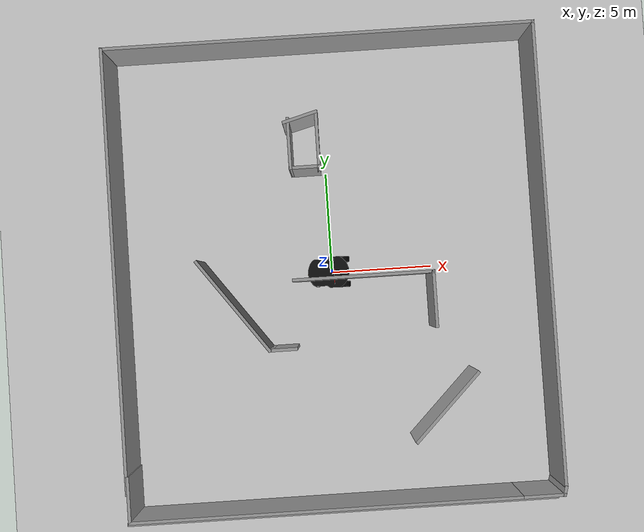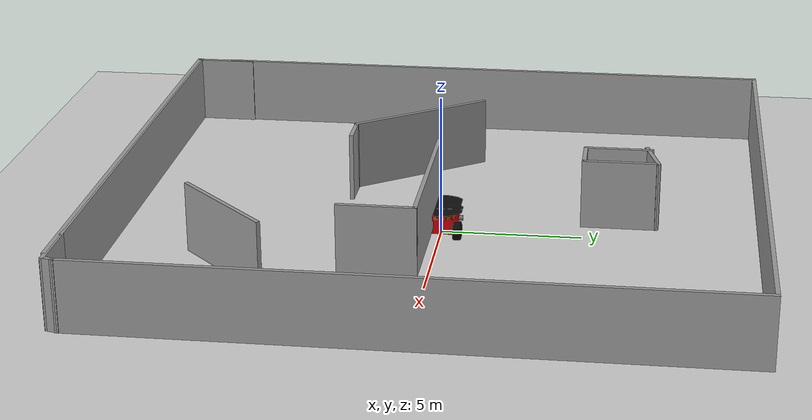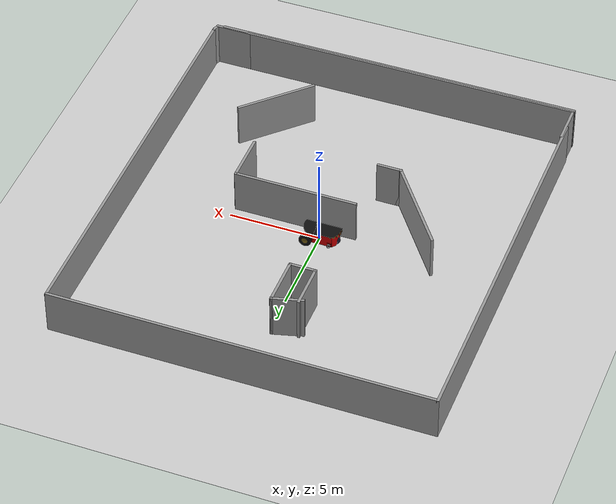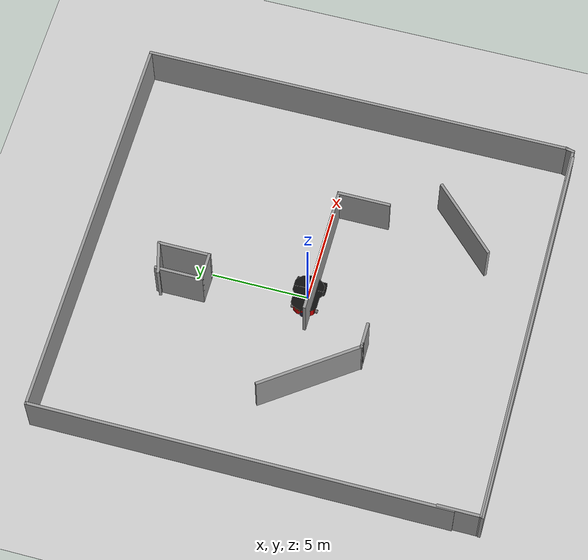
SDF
<?xml version="1.0"?>
<sdf version="1.6">
  <world name="default">

    <include>
      <uri>model://ground_plane</uri>
    </include>

    <include>
      <uri>model://sun</uri>
    </include>

    <model name='vehicle'>
      <pose>0 0 0.325 0 -0 0</pose>

      <link name='chassis'>
        <pose>-0.2 -0 0.2 0 -0 0</pose>
        <inertial>
          <mass>1.14395</mass>
          <inertia>
            <ixx>0.126164</ixx>
            <ixy>0</ixy>
            <ixz>0</ixz>
            <iyy>0.416519</iyy>
            <iyz>0</iyz>
            <izz>0.481014</izz>
          </inertia>
        </inertial>
        <visual name='visual'>
          <geometry>
            <mesh>
              <uri>model://pioneer3at/meshes/chassis.dae</uri>
              <scale>4 4 4</scale>
              <pose>0 0 7</pose>
            </mesh>
          </geometry>
        </visual>
        <collision name='collision'>
          <geometry>
            <box>
              <size>2.01142 1 0.568726</size>
            </box>
          </geometry>
        </collision>
      </link>

      <link name='left_wheel'>
        <pose>0.554283 0.625029 -0.025 -1.5707 0 0</pose>
        <inertial>
          <mass>2</mass>
          <inertia>
            <ixx>0.145833</ixx>
            <ixy>0</ixy>
            <ixz>0</ixz>
            <iyy>0.145833</iyy>
            <iyz>0</iyz>
            <izz>0.125</izz>
          </inertia>
        </inertial>
        <visual name='visual'>
          <geometry>
            <mesh>
              <uri>model://pioneer3at/meshes/wheel.dae</uri>
              <scale>3 3 3</scale>
            </mesh>
          </geometry>
        </visual>
        <collision name='collision'>
          <geometry>
            <sphere>
              <radius>0.3</radius>
            </sphere>
          </geometry>
          <surface>
            <friction>
              <ode>
                <mu>1</mu>
                <mu2>1</mu2>
                <slip1>0</slip1>
                <slip2>0</slip2>
              </ode>
            </friction>
            <contact>
              <ode>
                <soft_cfm>0</soft_cfm>
                <soft_erp>0.2</soft_erp>
                <kp>1e+13</kp>
                <kd>1</kd>
                <max_vel>0.01</max_vel>
                <min_depth>0.01</min_depth>
              </ode>
            </contact>
          </surface>
        </collision>
      </link>

      <link name='right_wheel'>
        <pose>0.554282 -0.625029 -0.025 -1.5707 0 0</pose>
        <inertial>
          <mass>2</mass>
          <inertia>
            <ixx>0.145833</ixx>
            <ixy>0</ixy>
            <ixz>0</ixz>
            <iyy>0.145833</iyy>
            <iyz>0</iyz>
            <izz>0.125</izz>
          </inertia>
        </inertial>
        <visual name='visual'>
          <geometry>
            <mesh>
              <uri>model://pioneer3at/meshes/wheel.dae</uri>
              <scale>3 3 3</scale>
            </mesh>
          </geometry>
        </visual>
        <collision name='collision'>
          <geometry>
            <sphere>
              <radius>0.3</radius>
            </sphere>
          </geometry>
          <surface>
            <friction>
              <ode>
                <mu>1</mu>
                <mu2>1</mu2>
                <slip1>0</slip1>
                <slip2>0</slip2>
              </ode>
            </friction>
            <contact>
              <ode>
                <soft_cfm>0</soft_cfm>
                <soft_erp>0.2</soft_erp>
                <kp>1e+13</kp>
                <kd>1</kd>
                <max_vel>0.01</max_vel>
                <min_depth>0.01</min_depth>
              </ode>
            </contact>
          </surface>
        </collision>
      </link>

      <link name='caster'>
        <pose>-0.957138 -0 -0.125 0 -0 0</pose>
        <inertial>
          <mass>1</mass>
          <inertia>
            <ixx>0.1</ixx>
            <ixy>0</ixy>
            <ixz>0</ixz>
            <iyy>0.1</iyy>
            <iyz>0</iyz>
            <izz>0.1</izz>
          </inertia>
        </inertial>
        <visual name='visual'>
         <material> <!-- Wheel material -->
          <ambient>0.1 0.1 0.1 1</ambient>
          <diffuse>0.1 0.1 0.2 1</diffuse>
          <specular>0 0 0 0</specular>
          <emissive>0 0 0 1</emissive>
        </material> <!-- End wheel material -->
          <geometry>
            <sphere>
              <radius>0.2</radius>
            </sphere>
          </geometry>
        </visual>
        <collision name='collision'>
          <geometry>
            <sphere>
              <radius>0.2</radius>
            </sphere>
          </geometry>
        </collision>
      </link>
       <!-- Add the laser range finder -->
       <link name="laser_link">
        <inertial>
          <!-- Mass of the laser range finder in kg -->
          <mass>0.1</mass>
        </inertial>
        <!-- Position is towards the front of the robot -->
        <!-- Laser finder is mounted on top -->
        <pose>0.15 0 0.70 0 0 0</pose>

        <!-- Add a mesh to make it more visually appealing -->
        <visual name="visual">
          <geometry>
            <mesh>
              <uri>model://hokuyo/meshes/hokuyo.dae</uri>
            </mesh>
          </geometry>
        </visual>

        <!-- Collision properties of the base of the laser range finder-->
        <collision name="collision-base">
          <pose>0 0 -0.0145 0 0 0</pose>
          <geometry>
            <box>
              <size>0.05 0.05 0.041</size>
            </box>
          </geometry>
        </collision>
        <!-- Collision properties of the top of the laser range finder-->
        <collision name="collision-top">
          <pose>0 0 0.0205 0 0 0</pose>
          <geometry>
            <cylinder>
              <radius>0.021</radius>
              <length>0.029</length>
            </cylinder>
          </geometry>
        </collision>

        <!-- Describes the type and properties of the sensor -->
  <sensor name="laser" type="ray">
    <pose>0.01 0 0.0175 0 -0 0</pose>
          <ray>
            <scan>
              <horizontal>
                <samples>181</samples>
                <resolution>1</resolution>
                <min_angle>-1.57080</min_angle>
                <max_angle>1.57080</max_angle>
              </horizontal>
            </scan>
            <range>
              <min>0.08</min>
              <max>10</max>
              <resolution>0.05</resolution>
            </range>
          </ray>
          <always_on>1</always_on>
          <update_rate>10</update_rate>
          <visualize>true</visualize>

          <plugin name='laser' filename='libgazebo_ros_ray_sensor.so'>
            <ros>
              <namespace>/demo</namespace>
              <argument>--ros-args --remap ~/out:=scan</argument>
            </ros>
            <output_type>sensor_msgs/LaserScan</output_type>
          </plugin>
  </sensor>
      </link>

      <link name='Wall_0'>
              <collision name='Wall_0_Collision'>
                <geometry>
                  <box>
                    <size>6.75 0.15 2.5</size>
                  </box>
                </geometry>
                <pose>5 5 1.25 0 -0 0</pose>
              </collision>
              <visual name='Wall_0_Visual'>
                <pose>0 0 1.25 0 -0 0</pose>
                <geometry>
                  <box>
                    <size>6.75 0.15 2.5</size>
                  </box>
                </geometry>
                <material>
                  <script>
                    <uri>file://media/materials/scripts/gazebo.material</uri>
                    <name>Gazebo/Grey</name>
                  </script>
                  <ambient>1 1 1 1</ambient>
                </material>
                <meta>
                  <layer>0</layer>
                </meta>
              </visual>
              <pose>1.45828 -0.30859 0 0 -0 0</pose>
            </link>
            <link name='Wall_1'>
              <collision name='Wall_1_Collision'>
                <geometry>
                  <box>
                    <size>0.16 0.15 2.5</size>
                  </box>
                </geometry>
                <pose>0 0 1.25 0 -0 0</pose>
              </collision>
              <visual name='Wall_1_Visual'>
                <pose>0 0 1.25 0 -0 0</pose>
                <geometry>
                  <box>
                    <size>0.16 0.15 2.5</size>
                  </box>
                </geometry>
                <material>
                  <script>
                    <uri>file://media/materials/scripts/gazebo.material</uri>
                    <name>Gazebo/Grey</name>
                  </script>
                  <ambient>1 1 1 1</ambient>
                </material>
                <meta>
                  <layer>0</layer>
                </meta>
              </visual>
              <pose>4.76328 -0.30859 0 0 -0 0</pose>
            </link>
            <link name='Wall_12'>
              <collision name='Wall_12_Collision'>
                <geometry>
                  <box>
                    <size>20.25 0.15 2.5</size>
                  </box>
                </geometry>
                <pose>0 0 1.25 0 -0 0</pose>
              </collision>
              <visual name='Wall_12_Visual'>
                <pose>0 0 1.25 0 -0 0</pose>
                <geometry>
                  <box>
                    <size>20.25 0.15 2.5</size>
                  </box>
                </geometry>
                <material>
                  <script>
                    <uri>file://media/materials/scripts/gazebo.material</uri>
                    <name>Gazebo/Grey</name>
                  </script>
                  <ambient>1 1 1 1</ambient>
                </material>
                <meta>
                  <layer>0</layer>
                </meta>
              </visual>
              <pose>-0.223153 -11.2513 0 0 -0 0</pose>
            </link>
            <link name='Wall_14'>
              <collision name='Wall_14_Collision'>
                <geometry>
                  <box>
                    <size>21.25 0.15 2.5</size>
                  </box>
                </geometry>
                <pose>0 0 1.25 0 -0 0</pose>
              </collision>
              <visual name='Wall_14_Visual'>
                <pose>0 0 1.25 0 -0 0</pose>
                <geometry>
                  <box>
                    <size>21.25 0.15 2.5</size>
                  </box>
                </geometry>
                <material>
                  <script>
                    <uri>file://media/materials/scripts/gazebo.material</uri>
                    <name>Gazebo/Grey</name>
                  </script>
                  <ambient>1 1 1 1</ambient>
                </material>
                <meta>
                  <layer>0</layer>
                </meta>
              </visual>
              <pose>-10.3084 0.7013 0 0 -0 1.5708</pose>
            </link>
            <link name='Wall_15'>
              <collision name='Wall_15_Collision'>
                <geometry>
                  <box>
                    <size>20.75 0.15 2.5</size>
                  </box>
                </geometry>
                <pose>0 0 1.25 0 -0 0</pose>
              </collision>
              <visual name='Wall_15_Visual'>
                <pose>0 0 1.25 0 -0 0</pose>
                <geometry>
                  <box>
                    <size>20.75 0.15 2.5</size>
                  </box>
                </geometry>
                <material>
                  <script>
                    <uri>file://media/materials/scripts/gazebo.material</uri>
                    <name>Gazebo/Grey</name>
                  </script>
                  <ambient>1 1 1 1</ambient>
                </material>
                <meta>
                  <layer>0</layer>
                </meta>
              </visual>
              <pose>-0.008427 11.2513 0 0 -0 0</pose>
            </link>
            <link name='Wall_16'>
              <collision name='Wall_16_Collision'>
                <geometry>
                  <box>
                    <size>22.25 0.15 2.5</size>
                  </box>
                </geometry>
                <pose>0 0 1.25 0 -0 0</pose>
              </collision>
              <visual name='Wall_16_Visual'>
                <pose>0 0 1.25 0 -0 0</pose>
                <geometry>
                  <box>
                    <size>22.25 0.15 2.5</size>
                  </box>
                </geometry>
                <material>
                  <script>
                    <uri>file://media/materials/scripts/gazebo.material</uri>
                    <name>Gazebo/Grey</name>
                  </script>
                  <ambient>1 1 1 1</ambient>
                </material>
                <meta>
                  <layer>0</layer>
                </meta>
              </visual>
              <pose>10.2916 0.2013 0 0 -0 -1.5708</pose>
            </link>
            <link name='Wall_17'>
              <collision name='Wall_17_Collision'>
                <geometry>
                  <box>
                    <size>0.5 0.15 2.5</size>
                  </box>
                </geometry>
                <pose>0 0 1.25 0 -0 0</pose>
              </collision>
              <visual name='Wall_17_Visual'>
                <pose>0 0 1.25 0 -0 0</pose>
                <geometry>
                  <box>
                    <size>0.5 0.15 2.5</size>
                  </box>
                </geometry>
                <material>
                  <script>
                    <uri>file://media/materials/scripts/gazebo.material</uri>
                    <name>Gazebo/Grey</name>
                  </script>
                  <ambient>1 1 1 1</ambient>
                </material>
                <meta>
                  <layer>0</layer>
                </meta>
              </visual>
              <pose>10.2463 -11.0177 0 0 -0 -1.8326</pose>
            </link>
            <link name='Wall_18'>
              <collision name='Wall_18_Collision'>
                <geometry>
                  <box>
                    <size>2 0.15 2.5</size>
                  </box>
                </geometry>
                <pose>0 0 1.25 0 -0 0</pose>
              </collision>
              <visual name='Wall_18_Visual'>
                <pose>0 0 1.25 0 -0 0</pose>
                <geometry>
                  <box>
                    <size>2 0.15 2.5</size>
                  </box>
                </geometry>
                <material>
                  <script>
                    <uri>file://media/materials/scripts/gazebo.material</uri>
                    <name>Gazebo/Grey</name>
                  </script>
                  <ambient>1 1 1 1</ambient>
                </material>
                <meta>
                  <layer>0</layer>
                </meta>
              </visual>
              <pose>9.27599 -11.1868 0 0 -0 3.14159</pose>
            </link>
            <link name='Wall_19'>
              <collision name='Wall_19_Collision'>
                <geometry>
                  <box>
                    <size>18.75 0.15 2.5</size>
                  </box>
                </geometry>
                <pose>0 0 1.25 0 -0 0</pose>
              </collision>
              <visual name='Wall_19_Visual'>
                <pose>0 0 1.25 0 -0 0</pose>
                <geometry>
                  <box>
                    <size>18.75 0.15 2.5</size>
                  </box>
                </geometry>
                <material>
                  <script>
                    <uri>file://media/materials/scripts/gazebo.material</uri>
                    <name>Gazebo/Grey</name>
                  </script>
                  <ambient>1 1 1 1</ambient>
                </material>
                <meta>
                  <layer>0</layer>
                </meta>
              </visual>
              <pose>-0.949013 -11.1868 0 0 -0 3.14159</pose>
            </link>
            <link name='Wall_2'>
              <collision name='Wall_2_Collision'>
                <geometry>
                  <box>
                    <size>2.75 0.15 2.5</size>
                  </box>
                </geometry>
                <pose>0 0 1.25 0 -0 0</pose>
              </collision>
              <visual name='Wall_2_Visual'>
                <pose>0 0 1.25 0 -0 0</pose>
                <geometry>
                  <box>
                    <size>2.75 0.15 2.5</size>
                  </box>
                </geometry>
                <material>
                  <script>
                    <uri>file://media/materials/scripts/gazebo.material</uri>
                    <name>Gazebo/Grey</name>
                  </script>
                  <ambient>1 1 1 1</ambient>
                </material>
                <meta>
                  <layer>0</layer>
                </meta>
              </visual>
              <pose>4.76828 -1.60859 0 0 -0 -1.5708</pose>
            </link>
            <link name='Wall_20'>
              <collision name='Wall_20_Collision'>
                <geometry>
                  <box>
                    <size>2.25 0.15 2.5</size>
                  </box>
                </geometry>
                <pose>0 0 1.25 0 -0 0</pose>
              </collision>
              <visual name='Wall_20_Visual'>
                <pose>0 0 1.25 0 -0 0</pose>
                <geometry>
                  <box>
                    <size>2.25 0.15 2.5</size>
                  </box>
                </geometry>
                <material>
                  <script>
                    <uri>file://media/materials/scripts/gazebo.material</uri>
                    <name>Gazebo/Grey</name>
                  </script>
                  <ambient>1 1 1 1</ambient>
                </material>
                <meta>
                  <layer>0</layer>
                </meta>
              </visual>
              <pose>-10.249 -10.1368 0 0 -0 1.5708</pose>
            </link>
            <link name='Wall_23'>
              <collision name='Wall_23_Collision'>
                <geometry>
                  <box>
                    <size>2.5 0.15 2.5</size>
                  </box>
                </geometry>
                <pose>0 0 1.25 0 -0 0</pose>
              </collision>
              <visual name='Wall_23_Visual'>
                <pose>0 0 1.25 0 -0 0</pose>
                <geometry>
                  <box>
                    <size>2.5 0.15 2.5</size>
                  </box>
                </geometry>
                <material>
                  <script>
                    <uri>file://media/materials/scripts/gazebo.material</uri>
                    <name>Gazebo/Grey</name>
                  </script>
                  <ambient>1 1 1 1</ambient>
                </material>
                <meta>
                  <layer>0</layer>
                </meta>
              </visual>
              <pose>-1.66575 6.18639 0 0 -0 -1.5708</pose>
            </link>
            <link name='Wall_24'>
              <collision name='Wall_24_Collision'>
                <geometry>
                  <box>
                    <size>1.5 0.15 2.5</size>
                  </box>
                </geometry>
                <pose>0 0 1.25 0 -0 0</pose>
              </collision>
              <visual name='Wall_24_Visual'>
                <pose>0 0 1.25 0 -0 0</pose>
                <geometry>
                  <box>
                    <size>1.5 0.15 2.5</size>
                  </box>
                </geometry>
                <material>
                  <script>
                    <uri>file://media/materials/scripts/gazebo.material</uri>
                    <name>Gazebo/Grey</name>
                  </script>
                  <ambient>1 1 1 1</ambient>
                </material>
                <meta>
                  <layer>0</layer>
                </meta>
              </visual>
              <pose>-0.990749 5.01139 0 0 -0 0</pose>
            </link>
            <link name='Wall_25'>
              <collision name='Wall_25_Collision'>
                <geometry>
                  <box>
                    <size>0.16 0.15 2.5</size>
                  </box>
                </geometry>
                <pose>0 0 1.25 0 -0 0</pose>
              </collision>
              <visual name='Wall_25_Visual'>
                <pose>0 0 1.25 0 -0 0</pose>
                <geometry>
                  <box>
                    <size>0.16 0.15 2.5</size>
                  </box>
                </geometry>
                <material>
                  <script>
                    <uri>file://media/materials/scripts/gazebo.material</uri>
                    <name>Gazebo/Grey</name>
                  </script>
                  <ambient>1 1 1 1</ambient>
                </material>
                <meta>
                  <layer>0</layer>
                </meta>
              </visual>
              <pose>-0.310749 5.01139 0 0 -0 0</pose>
            </link>
            <link name='Wall_26'>
              <collision name='Wall_26_Collision'>
                <geometry>
                  <box>
                    <size>2.75 0.15 2.5</size>
                  </box>
                </geometry>
                <pose>0 0 1.25 0 -0 0</pose>
              </collision>
              <visual name='Wall_26_Visual'>
                <pose>0 0 1.25 0 -0 0</pose>
                <geometry>
                  <box>
                    <size>2.75 0.15 2.5</size>
                  </box>
                </geometry>
                <material>
                  <script>
                    <uri>file://media/materials/scripts/gazebo.material</uri>
                    <name>Gazebo/Grey</name>
                  </script>
                  <ambient>1 1 1 1</ambient>
                </material>
                <meta>
                  <layer>0</layer>
                </meta>
              </visual>
              <pose>-0.305749 6.31139 0 0 -0 1.5708</pose>
            </link>
            <link name='Wall_27'>
              <collision name='Wall_27_Collision'>
                <geometry>
                  <box>
                    <size>1.75 0.15 2.5</size>
                  </box>
                </geometry>
                <pose>0 0 1.25 0 -0 0</pose>
              </collision>
              <visual name='Wall_27_Visual'>
                <pose>0 0 1.25 0 -0 0</pose>
                <geometry>
                  <box>
                    <size>1.75 0.15 2.5</size>
                  </box>
                </geometry>
                <material>
                  <script>
                    <uri>file://media/materials/scripts/gazebo.material</uri>
                    <name>Gazebo/Grey</name>
                  </script>
                  <ambient>1 1 1 1</ambient>
                </material>
                <meta>
                  <layer>0</layer>
                </meta>
              </visual>
              <pose>-1.07849 7.40433 0 0 -0 -2.87979</pose>
            </link>
            <link name='Wall_29'>
              <collision name='Wall_29_Collision'>
                <geometry>
                  <box>
                    <size>5.58069 0.15 2.5</size>
                  </box>
                </geometry>
                <pose>0 0 1.25 0 -0 0</pose>
              </collision>
              <visual name='Wall_29_Visual'>
                <pose>0 0 1.25 0 -0 0</pose>
                <geometry>
                  <box>
                    <size>5.58069 0.15 2.5</size>
                  </box>
                </geometry>
                <material>
                  <script>
                    <uri>file://media/materials/scripts/gazebo.material</uri>
                    <name>Gazebo/Grey</name>
                  </script>
                  <ambient>1 1 1 1</ambient>
                </material>
                <meta>
                  <layer>0</layer>
                </meta>
              </visual>
              <pose>-4.80591 -1.35777 0 0 -0 -0.938765</pose>
            </link>
            <link name='Wall_31'>
              <collision name='Wall_31_Collision'>
                <geometry>
                  <box>
                    <size>4.5 0.15 2.5</size>
                  </box>
                </geometry>
                <pose>0 0 1.25 0 -0 0</pose>
              </collision>
              <visual name='Wall_31_Visual'>
                <pose>0 0 1.25 0 -0 0</pose>
                <geometry>
                  <box>
                    <size>4.5 0.15 2.5</size>
                  </box>
                </geometry>
                <material>
                  <script>
                    <uri>file://media/materials/scripts/gazebo.material</uri>
                    <name>Gazebo/Grey</name>
                  </script>
                  <ambient>1 1 1 1</ambient>
                </material>
                <meta>
                  <layer>0</layer>
                </meta>
              </visual>
              <pose>5.01995 -6.76237 0 0 -0 0.785398</pose>
            </link>
            <link name='Wall_4'>
              <collision name='Wall_4_Collision'>
                <geometry>
                  <box>
                    <size>0.3 0.15 2.5</size>
                  </box>
                </geometry>
                <pose>0 0 1.25 0 -0 0</pose>
              </collision>
              <visual name='Wall_4_Visual'>
                <pose>0 0 1.25 0 -0 0</pose>
                <geometry>
                  <box>
                    <size>0.3 0.15 2.5</size>
                  </box>
                </geometry>
                <material>
                  <script>
                    <uri>file://media/materials/scripts/gazebo.material</uri>
                    <name>Gazebo/Grey</name>
                  </script>
                  <ambient>1 1 1 1</ambient>
                </material>
                <meta>
                  <layer>0</layer>
                </meta>
              </visual>
              <pose>-3.12672 -3.54859 0 0 -0 0</pose>
            </link>
            <link name='Wall_5'>
              <collision name='Wall_5_Collision'>
                <geometry>
                  <box>
                    <size>1.25 0.15 2.5</size>
                  </box>
                </geometry>
                <pose>0 0 1.25 0 -0 0</pose>
              </collision>
              <visual name='Wall_5_Visual'>
                <pose>0 0 1.25 0 -0 0</pose>
                <geometry>
                  <box>
                    <size>1.25 0.15 2.5</size>
                  </box>
                </geometry>
                <material>
                  <script>
                    <uri>file://media/materials/scripts/gazebo.material</uri>
                    <name>Gazebo/Grey</name>
                  </script>
                  <ambient>1 1 1 1</ambient>
                </material>
                <meta>
                  <layer>0</layer>
                </meta>
              </visual>
              <pose>-2.50172 -3.54859 0 0 -0 0</pose>
            </link>

      <joint name='left_wheel_joint' type='revolute'>
        <parent>chassis</parent>
        <child>left_wheel</child>
        <axis>
          <xyz>0 0 1</xyz>
          <limit>
            <lower>-1.79769e+308</lower>
            <upper>1.79769e+308</upper>
          </limit>
        </axis>
      </joint>

      <joint name='right_wheel_joint' type='revolute'>
        <parent>chassis</parent>
        <child>right_wheel</child>
        <axis>
          <xyz>0 0 1</xyz>
          <limit>
            <lower>-1.79769e+308</lower>
            <upper>1.79769e+308</upper>
          </limit>
        </axis>
      </joint>

      <!-- Connect laser range finder to the robot's body -->
      <joint type="fixed" name="laser_joint">
        <child>laser_link</child>
          <parent>chassis</parent>
      </joint>

      <joint name='caster_wheel' type='ball'>
        <parent>chassis</parent>
        <child>caster</child>
      </joint>

      <plugin name='diff_drive' filename='libgazebo_ros_diff_drive.so'>

        <ros>
          <namespace>/demo</namespace>
          <remapping>cmd_vel:=cmd_demo</remapping>
          <remapping>odom:=odom_demo</remapping>
        </ros>

        <!-- wheels -->
        <left_joint>left_wheel_joint</left_joint>
        <right_joint>right_wheel_joint</right_joint>

        <!-- kinematics -->
        <wheel_separation>1.25</wheel_separation>
        <wheel_diameter>0.6</wheel_diameter>

        <!-- limits -->
        <max_wheel_torque>20</max_wheel_torque>
        <max_wheel_acceleration>1.0</max_wheel_acceleration>

        <!-- output -->
        <publish_odom>true</publish_odom>
        <publish_odom_tf>true</publish_odom_tf>
        <publish_wheel_tf>true</publish_wheel_tf>

        <odometry_frame>odom_demo</odometry_frame>
        <robot_base_frame>chassis</robot_base_frame>

      </plugin>

    </model>

  </world>
</sdf>
